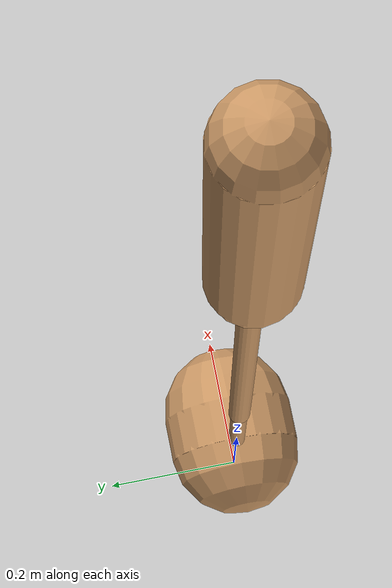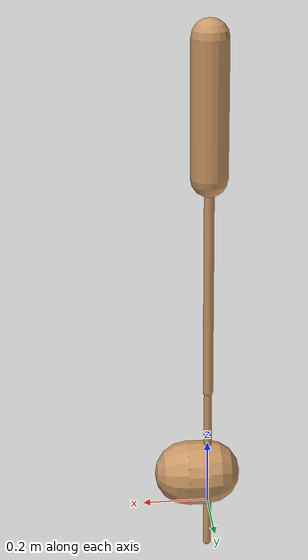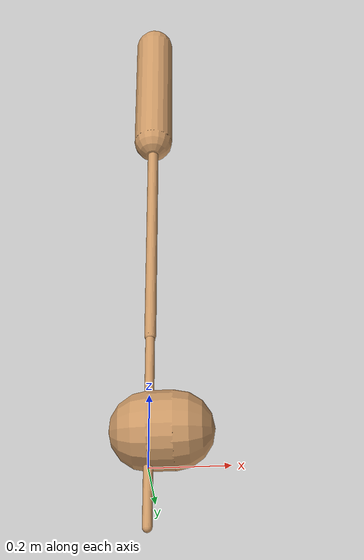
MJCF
<mujoco model="walker2d">
  <compiler angle="degree" coordinate="global" inertiafromgeom="true" />
  <default>
    <joint armature="0.01" damping=".1" limited="true" />
    <geom conaffinity="0" condim="3" contype="1" density="1000" friction="0.8 .1 .1" rgba="0.8 0.6 .4 1" />
  </default>
  <option integrator="RK4" timestep="0.002" />
  <worldbody>

    <body name="torso" pos="0 0 0.47412854881441935">
      <joint armature="0" axis="1 0 0" damping="0" limited="false" name="ignorex" pos="0 0 0" stiffness="0" type="slide" />
      <joint armature="0" axis="0 0 1" damping="0" limited="false" name="ignorez" pos="0 0 0" ref="1.25" stiffness="0" type="slide" />
      <joint armature="0" axis="0 1 0" damping="0" limited="false" name="ignorey" pos="0 0 0" stiffness="0" type="hinge" />
      <geom fromto="0 0 1.45 0 0 1.05" name="torso_geom" size="0.054920094626735055" type="capsule" />
      <body name="thigh">
        <joint axis="0 -1 0" name="thigh_joint" pos="0 0 1.05" range="-150 0" type="hinge" />
        <geom fromto="0.0 0.0 1.05 0.0 0.0 0.37541279266685396" name="thigh_geom" size="0.01517241527404688" type="capsule" />
        <body name="leg" pos="0.0 0.0 -0.22458720733314602">
          <joint axis="0 -1 0" name="leg_joint" pos="0 0 0.6" range="-150 0" type="hinge" />
          <geom fromto="0.0 0.0 0.6 0.0 0.0 -0.14954134148127332" name="leg_geom" size="0.012137932219237504" type="capsule" />
          <body name="foot" pos="0.0 0.0 -0.24954134148127333">
            <joint axis="0 -1 0" name="foot_joint" pos="0 0 0.1" range="-45 45" type="hinge" />
            <geom fromto="0.0 0.0 0.1 0.06434494650267118 0.0 0.1" name="foot_geom" size="0.0987825521419438" type="capsule" />
          </body>
        </body>
      </body>

      <body name="thigh_left">
        <joint axis="0 -1 0" name="thigh_left_joint" pos="0 0 1.05" range="-150 0" type="hinge" />
        <geom fromto="0.0 0.0 1.05 0.0 0.0 0.37541279266685396" name="thigh_left_geom" rgba=".7 .3 .6 1" size="0.01517241527404688" type="capsule" />
        <body name="leg_left" pos="0.0 0.0 -0.22458720733314602">
          <joint axis="0 -1 0" name="leg_left_joint" pos="0 0 0.6" range="-150 0" type="hinge" />
          <geom fromto="0.0 0.0 0.6 0.0 0.0 -0.14954134148127332" name="leg_left_geom" rgba=".7 .3 .6 1" size="0.012137932219237504" type="capsule" />
          <body name="foot_left" pos="0.0 0.0 -0.24954134148127333">
            <joint axis="0 -1 0" name="foot_left_joint" pos="0 0 0.1" range="-45 45" type="hinge" />
            <geom fromto="0.0 0.0 0.1 0.06434494650267118 0.0 0.1" name="foot_left_geom" rgba=".7 .3 .6 1" size="0.0987825521419438" type="capsule" />
          </body>
        </body>
      </body>
    </body>
  </worldbody>
  <actuator>

    <motor ctrllimited="true" ctrlrange="-1.0 1.0" gear="100" joint="thigh_joint" />
    <motor ctrllimited="true" ctrlrange="-1.0 1.0" gear="100" joint="leg_joint" />
    <motor ctrllimited="true" ctrlrange="-1.0 1.0" gear="100" joint="foot_joint" />
    <motor ctrllimited="true" ctrlrange="-1.0 1.0" gear="100" joint="thigh_left_joint" />
    <motor ctrllimited="true" ctrlrange="-1.0 1.0" gear="100" joint="leg_left_joint" />
    <motor ctrllimited="true" ctrlrange="-1.0 1.0" gear="100" joint="foot_left_joint" />

  </actuator>
</mujoco>
